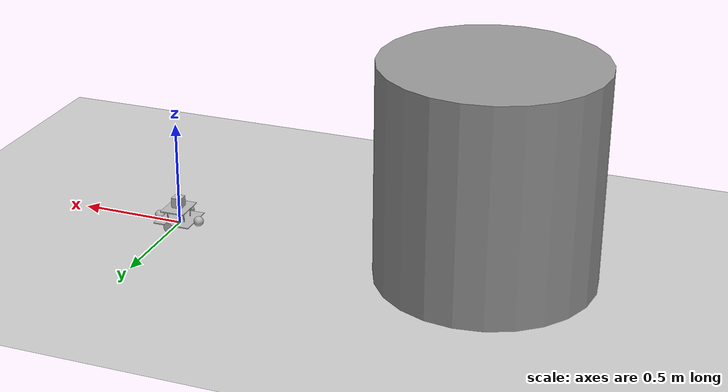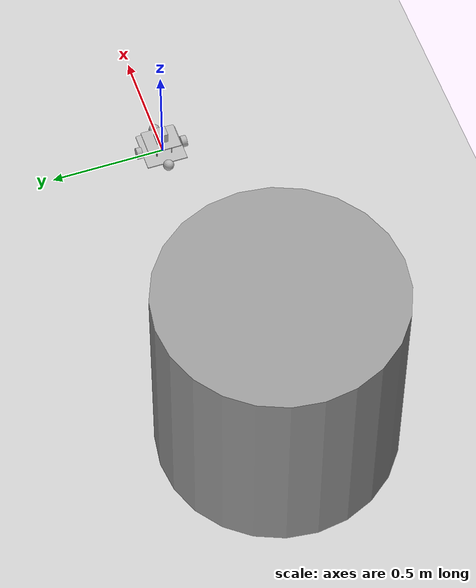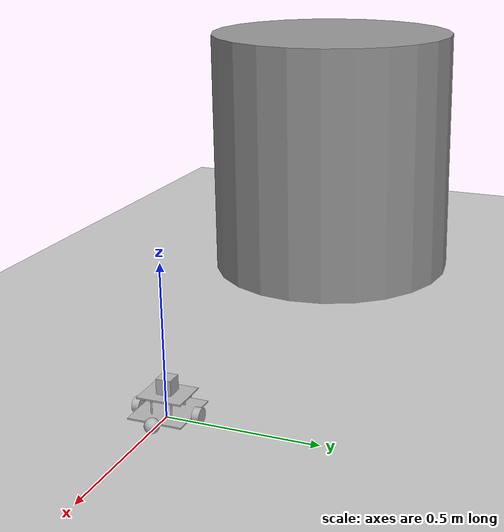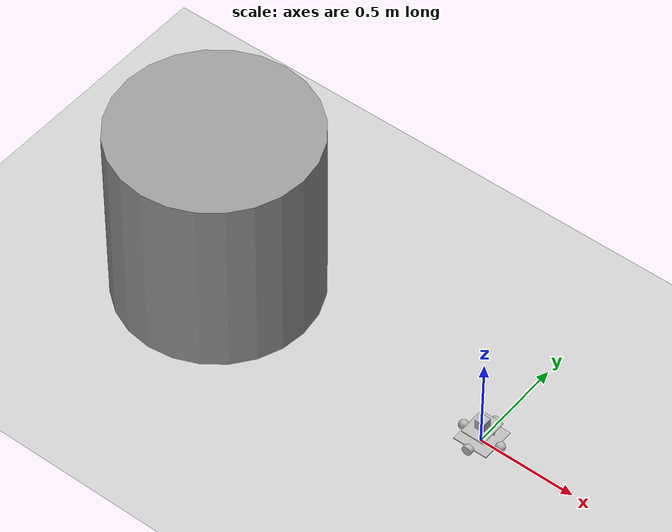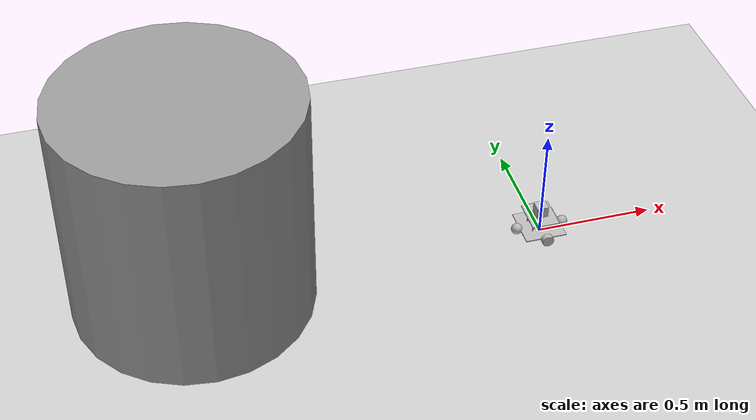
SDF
<sdf version="1.6">
 <world name="default">
  <light name="sun" type="directional">
   <pose>0 0 10 0 -0 0</pose>
   <diffuse>0.8 0.8 0.8 1</diffuse>
   <specular>0.2 0.2 0.2 1</specular>
   <attenuation>
    <range>1000</range>
    <constant>0.9</constant>
    <linear>0.01</linear>
    <quadratic>0.001</quadratic>
   </attenuation>
   <direction>-0.5 0.1 -0.9</direction>
  </light>
  <model name="ground_plane">
   <static>1</static>
   <link name="link">
    <collision name="collision">
     <geometry><plane><normal>0 0 1</normal><size>100 100</size></plane></geometry>
     <surface>
      <contact><collide_bitmask>65535</collide_bitmask></contact>
      <friction><ode><mu>100</mu><mu2>50</mu2></ode></friction>
     </surface>
    </collision>
    <visual name="visual">
     <cast_shadows>0</cast_shadows>
     <geometry><plane><normal>0 0 1</normal><size>100 100</size></plane></geometry>
     <material>
      <script><uri>file://media/materials/scripts/gazebo.material</uri><name>Gazebo/Grey</name></script>
     </material>
    </visual>
   </link>
  </model>
  <gravity>0 0 -9.8</gravity>
  <magnetic_field>6e-06 2.3e-05 -4.2e-05</magnetic_field>
  <atmosphere type="adiabatic"/>
  <physics name="default_physics" default="0" type="ode">
   <max_step_size>0.001</max_step_size>
   <real_time_factor>1</real_time_factor>
   <real_time_update_rate>1000</real_time_update_rate>
  </physics>
  <scene><ambient>0.4 0.4 0.4 1</ambient><background>0.7 0.7 0.7 1</background><shadows>1</shadows></scene>
  <audio><device>default</device></audio>
  <spherical_coordinates>
   <surface_model>EARTH_WGS84</surface_model>
   <latitude_deg>0</latitude_deg>
   <longitude_deg>0</longitude_deg>
   <elevation>0</elevation>
   <heading_deg>0</heading_deg>
  </spherical_coordinates>
  <model name="OMNI">
   <link name="wheel_base">
    <inertial>
     <pose>0 0 0.009291 0 -0 0</pose>
     <mass>1.78801</mass>
     <inertia>
      <ixx>0.00217841</ixx>
      <ixy>0</ixy>
      <ixz>0</ixz>
      <iyy>0.0145923</iyy>
      <iyz>0</iyz>
      <izz>0.0150714</izz>
     </inertia>
    </inertial>
    <collision name="wheel_base_collision">
     <geometry><box><size>0.18 0.18 0.005</size></box></geometry>
    </collision>
    <collision name="wheel_base_fixed_joint_lump__cam_collision_1">
     <pose>0 0 0.0865 0 -0 0</pose>
     <geometry><box><size>0.05 0.05 0.05</size></box></geometry>
    </collision>
    <collision name="wheel_base_fixed_joint_lump__cam_tier_collision_2">
     <pose>0 0 0.0565 0 -0 0</pose>
     <geometry><box><size>0.119205 0.14876 0.005</size></box></geometry>
    </collision>
    <collision name="wheel_base_fixed_joint_lump__support_lf_collision_3">
     <pose>0.042023 0.033674 0.02825 0 -0 0</pose>
     <geometry><cylinder><length>0.0515</length><radius>0.0025</radius></cylinder></geometry>
    </collision>
    <collision name="wheel_base_fixed_joint_lump__support_lr_collision_4">
     <pose>0.042023 -0.033674 0.02825 0 -0 0</pose>
     <geometry><cylinder><length>0.0515</length><radius>0.0025</radius></cylinder></geometry>
    </collision>
    <collision name="wheel_base_fixed_joint_lump__support_rf_collision_5">
     <pose>-0.042023 0.033674 0.02825 0 -0 0</pose>
     <geometry><cylinder><length>0.0515</length><radius>0.0025</radius></cylinder></geometry>
    </collision>
    <collision name="wheel_base_fixed_joint_lump__support_rr_collision_6">
     <pose>-0.042023 -0.033674 0.02825 0 -0 0</pose>
     <geometry><cylinder><length>0.0515</length><radius>0.0025</radius></cylinder></geometry>
    </collision>
    <collision name="wheel_base_fixed_joint_lump__bearing_front_collision_7">
     <pose>0.102 0 0 0 -0 0</pose>
     <geometry><sphere><radius>0.024</radius></sphere></geometry>
    </collision>
    <collision name="wheel_base_fixed_joint_lump__bearing_rear_collision_8">
     <pose>-0.102 0 0 0 -0 0</pose>
     <geometry><sphere><radius>0.024</radius></sphere></geometry>
    </collision>
    <visual name="wheel_base_visual"><geometry><box><size>0.18 0.18 0.005</size></box></geometry></visual>
    <visual name="wheel_base_fixed_joint_lump__cam_visual_1">
     <pose>0 0 0.0865 0 -0 0</pose>
     <geometry><box><size>0.05 0.05 0.05</size></box></geometry>
     <material><script><uri>__default__</uri><name>__default__</name></script></material>
    </visual>
    <visual name="wheel_base_fixed_joint_lump__cam_tier_visual_2">
     <pose>0 0 0.0565 0 -0 0</pose>
     <geometry><box><size>0.119205 0.14876 0.005</size></box></geometry>
    </visual>
    <visual name="wheel_base_fixed_joint_lump__support_lf_visual_3">
     <pose>0.042023 0.033674 0.02825 0 -0 0</pose>
     <geometry><cylinder><length>0.0515</length><radius>0.0025</radius></cylinder></geometry>
    </visual>
    <visual name="wheel_base_fixed_joint_lump__support_lr_visual_4">
     <pose>0.042023 -0.033674 0.02825 0 -0 0</pose>
     <geometry><cylinder><length>0.0515</length><radius>0.0025</radius></cylinder></geometry>
    </visual>
    <visual name="wheel_base_fixed_joint_lump__support_rf_visual_5">
     <pose>-0.042023 0.033674 0.02825 0 -0 0</pose>
     <geometry><cylinder><length>0.0515</length><radius>0.0025</radius></cylinder></geometry>
    </visual>
    <visual name="wheel_base_fixed_joint_lump__support_rr_visual_6">
     <pose>-0.042023 -0.033674 0.02825 0 -0 0</pose>
     <geometry><cylinder><length>0.0515</length><radius>0.0025</radius></cylinder></geometry>
    </visual>
    <visual name="wheel_base_fixed_joint_lump__bearing_front_visual_7">
     <pose>0.102 0 0 0 -0 0</pose>
     <geometry><sphere><radius>0.024</radius></sphere></geometry>
    </visual>
    <visual name="wheel_base_fixed_joint_lump__bearing_rear_visual_8">
     <pose>-0.102 0 0 0 -0 0</pose>
     <geometry><sphere><radius>0.024</radius></sphere></geometry>
    </visual>
    <sensor name="camera" type="wideanglecamera">
     <camera name="__default__">
      <horizontal_fov>6.283</horizontal_fov>
      <image><width>320</width><height>240</height></image>
      <clip><near>0.1</near><far>100</far></clip>
      <lens>
       <type>custom</type>
       <custom_function><c1>1.05</c1><c2>4</c2><f>1</f><fun>tan</fun></custom_function>
       <scale_to_hfov>1</scale_to_hfov>
       <cutoff_angle>3.1415</cutoff_angle>
       <env_texture_size>512</env_texture_size>
      </lens>
     </camera>
     <plugin name="camera_controller" filename="libgazebo_ros_camera.so">
      <alwaysOn>1</alwaysOn>
      <updateRate>0.0</updateRate>
      <cameraName>camera1</cameraName>
      <imageTopicName>image_raw</imageTopicName>
      <cameraInfoTopicName>camera_info</cameraInfoTopicName>
      <frameName>camera_link</frameName>
      <hackBaseline>0.07</hackBaseline>
      <distortionK1>0.0</distortionK1>
      <distortionK2>0.0</distortionK2>
      <distortionK3>0.0</distortionK3>
      <distortionT1>0.0</distortionT1>
      <distortionT2>0.0</distortionT2>
      <robotNamespace>/omni/</robotNamespace>
     </plugin>
     <pose>0 0 0.0865 0 -0 0</pose>
    </sensor>
   </link>
   <link name="left_wheel">
    <pose>0 0.102 0 0 1.57075 1.57075</pose>
    <inertial>
     <mass>0.6</mass>
     <inertia>
      <ixx>0.000123302</ixx>
      <ixy>0</ixy>
      <ixz>0</ixz>
      <iyy>0.000123302</iyy>
      <iyz>0</iyz>
      <izz>0.000189003</izz>
     </inertia>
    </inertial>
    <collision name="left_wheel_collision">
     <geometry><cylinder><length>0.024</length><radius>0.0251</radius></cylinder></geometry>
    </collision>
    <visual name="left_wheel_visual">
     <geometry><cylinder><length>0.024</length><radius>0.0251</radius></cylinder></geometry>
    </visual>
   </link>
   <joint name="wb_lw_joint" type="revolute">
    <child>left_wheel</child>
    <parent>wheel_base</parent>
    <axis>
     <xyz>4.6e-05 1 4.6e-05</xyz>
     <limit><lower>-1e+16</lower><upper>1e+16</upper></limit>
     <dynamics>
      <damping>0</damping>
      <friction>14.595</friction>
      <spring_reference>0</spring_reference>
      <spring_stiffness>0</spring_stiffness>
     </dynamics>
     <use_parent_model_frame>1</use_parent_model_frame>
    </axis>
   </joint>
   <link name="right_wheel">
    <pose>0 -0.102 0 0 1.57075 1.57075</pose>
    <inertial>
     <mass>0.6</mass>
     <inertia>
      <ixx>0.000123302</ixx>
      <ixy>0</ixy>
      <ixz>0</ixz>
      <iyy>0.000123302</iyy>
      <iyz>0</iyz>
      <izz>0.000189003</izz>
     </inertia>
    </inertial>
    <collision name="right_wheel_collision">
     <geometry><cylinder><length>0.024</length><radius>0.0251</radius></cylinder></geometry>
    </collision>
    <visual name="right_wheel_visual">
     <geometry><cylinder><length>0.024</length><radius>0.0251</radius></cylinder></geometry>
    </visual>
   </link>
   <joint name="wb_rw_joint" type="revolute">
    <child>right_wheel</child>
    <parent>wheel_base</parent>
    <axis>
     <xyz>4.6e-05 1 4.6e-05</xyz>
     <limit><lower>-1e+16</lower><upper>1e+16</upper></limit>
     <dynamics>
      <damping>0</damping>
      <friction>14.595</friction>
      <spring_reference>0</spring_reference>
      <spring_stiffness>0</spring_stiffness>
     </dynamics>
     <use_parent_model_frame>1</use_parent_model_frame>
    </axis>
   </joint>
   <static>0</static>
   <plugin name="gazebo_ros_control" filename="libgazebo_ros_control.so">
    <robotNamespace>/omni</robotNamespace>
   </plugin>
   <pose>0.000144 0.006527 0.025096 4.1e-05 0.005706 7.5e-05</pose>
  </model>
  <model name="unit_cylinder">
   <pose>-1.5 -4e-06 0.499997 4e-06 4e-06 -0</pose>
   <link name="link">
    <inertial>
     <mass>1</mass>
     <inertia><ixx>0.145833</ixx><ixy>0</ixy><ixz>0</ixz><iyy>0.145833</iyy><iyz>0</iyz><izz>0.125</izz></inertia>
    </inertial>
    <collision name="collision">
     <geometry><cylinder><radius>0.5</radius><length>1</length></cylinder></geometry>
    </collision>
    <visual name="visual">
     <geometry><cylinder><radius>0.5</radius><length>1</length></cylinder></geometry>
     <material>
      <script><name>Gazebo/Grey</name><uri>file://media/materials/scripts/gazebo.material</uri></script>
     </material>
    </visual>
   </link>
  </model>
 </world>
</sdf>
